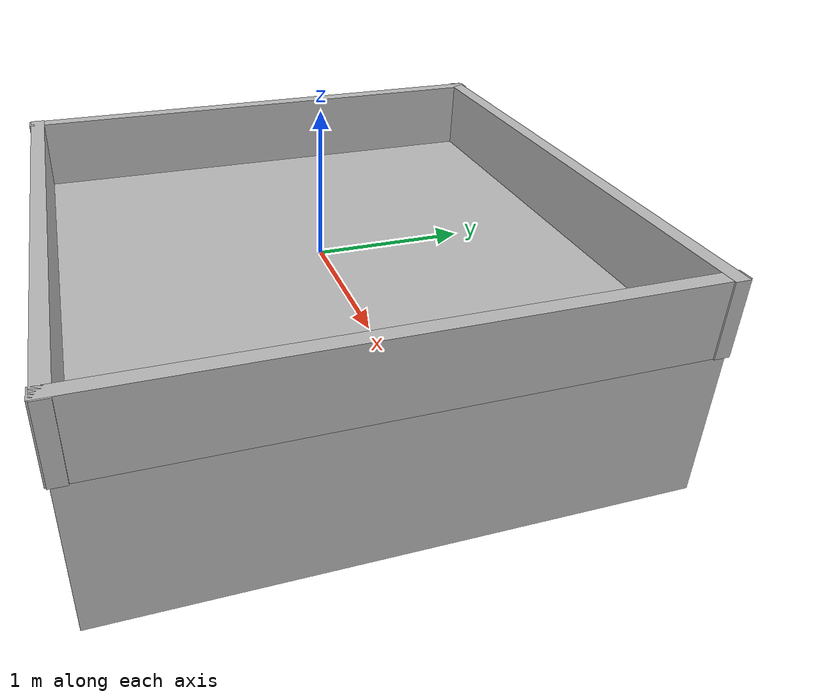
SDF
<?xml version="1.0" ?>
<sdf version="1.5">
  <model name="box">
    <link name="base">
      <inertial>
        <mass>0.1</mass>
      </inertial>
      <visual name="visual">
        <pose>0 0 -0.5 0 0 0</pose>
        <geometry>
          <box>
            <size>3.6576 3.6576 1</size>
          </box>
        </geometry>
      </visual>
      <collision name="collision">
        <pose>0 0 -0.5 0 0 0</pose>
        <geometry>
          <box>
            <size>3.6576 3.6576 1</size>
          </box>
        </geometry>
      </collision>
    </link>
    <link name="wall">
      <inertial>
        <mass>0.1</mass>
      </inertial>
      <visual name="visual">
        <pose>1.79 0 0.25 0 0 0</pose>
        <geometry>
          <box>
            <size>0.1 3.7 0.5</size>
          </box>
        </geometry>
      </visual>
      <collision name="collision">
        <pose>1.79 0 0.25 0 0 0</pose>
        <geometry>
          <box>
            <size>0.1 3.7 0.5</size>
          </box>
        </geometry>
      </collision>
    </link>
    <joint name="wall_ground" type="fixed">
        <parent>base</parent>
        <child>wall</child>
        <pose>0 0 0 0 0 0</pose>
    </joint>
    <link name="wall2">
      <inertial>
        <mass>0.1</mass>
      </inertial>
      <visual name="visual">
        <pose>-1.79 0 0.25 0 0 0</pose>
        <geometry>
          <box>
            <size>0.1 3.7 0.5</size>
          </box>
        </geometry>
      </visual>
      <collision name="collision">
        <pose>-1.79 0 0.25 0 0 0</pose>
        <geometry>
          <box>
            <size>0.1 3.7 0.5</size>
          </box>
        </geometry>
      </collision>
    </link>
    <joint name="wall2_ground" type="fixed">
        <parent>base</parent>
        <child>wall2</child>
        <pose>0 0 0 0 0 0</pose>
    </joint>
    <link name="wall3">
      <inertial>
        <mass>0.1</mass>
      </inertial>
      <visual name="visual">
        <pose>0 1.79 0.25 0 0 0</pose>
        <geometry>
          <box>
            <size>3.7 0.1 0.5</size>
          </box>
        </geometry>
      </visual>
      <collision name="collision">
        <pose>0 1.79 0.25 0 0 0</pose>
        <geometry>
          <box>
            <size>3.7 0.1 0.5</size>
          </box>
        </geometry>
      </collision>
    </link>
    <joint name="wall3_ground" type="fixed">
        <parent>base</parent>
        <child>wall3</child>
        <pose>0 0 0 0 0 0</pose>
    </joint>
    <link name="wall4">
      <inertial>
        <mass>0.1</mass>
      </inertial>
      <visual name="visual">
        <pose>0 -1.79 0.25 0 0 0</pose>
        <geometry>
          <box>
            <size>3.7 0.1 0.5</size>
          </box>
        </geometry>
      </visual>
      <collision name="collision">
        <pose>0 -1.79 0.25 0 0 0</pose>
        <geometry>
          <box>
            <size>3.7 0.1 0.5</size>
          </box>
        </geometry>
      </collision>
    </link>
    <joint name="wall4_ground" type="fixed">
        <parent>base</parent>
        <child>wall4</child>
        <pose>0 0 0 0 0 0</pose>
    </joint>
  </model>
</sdf>
